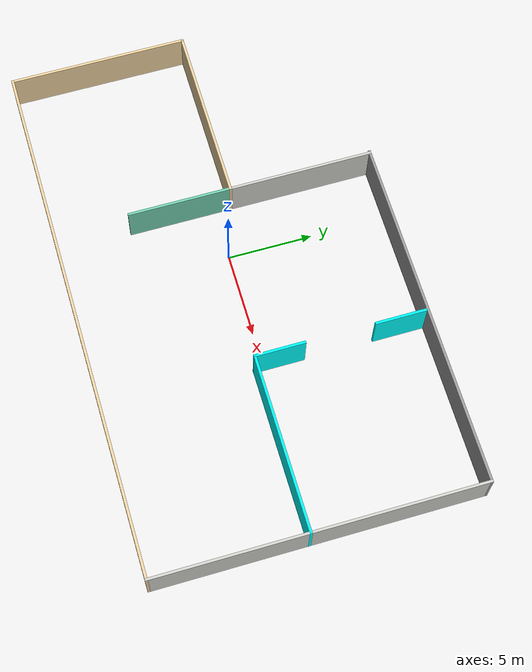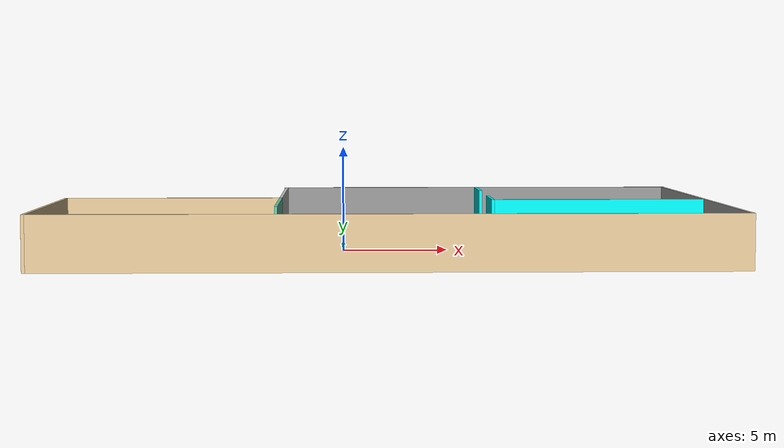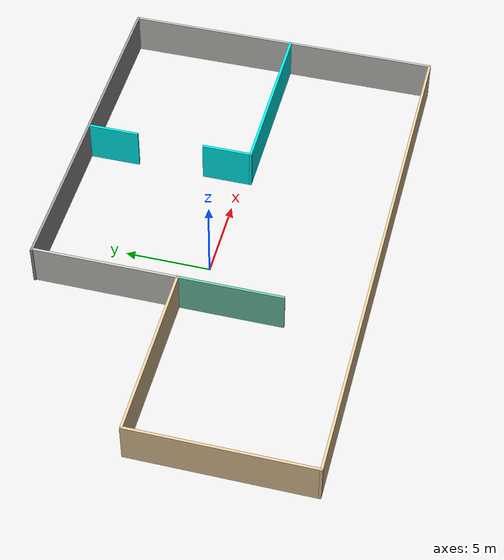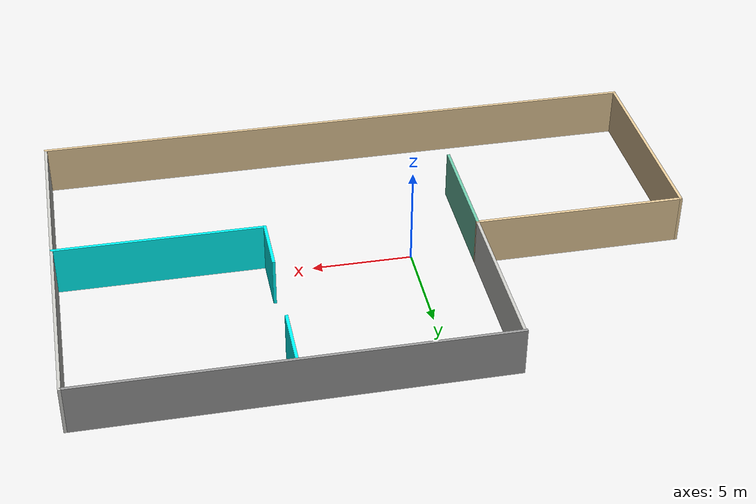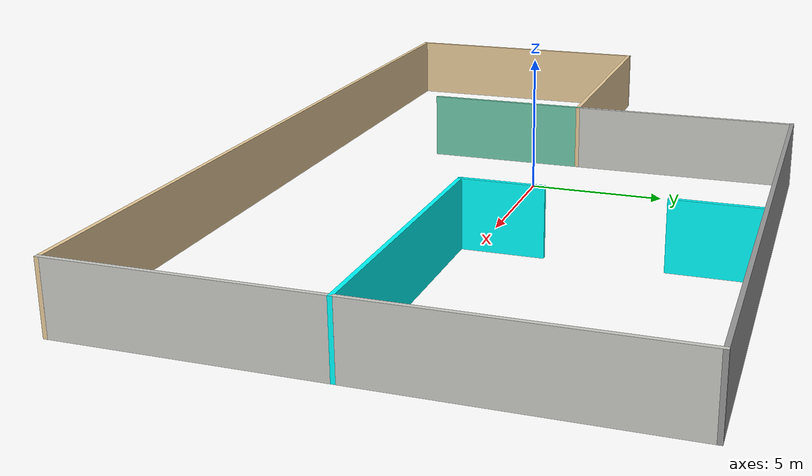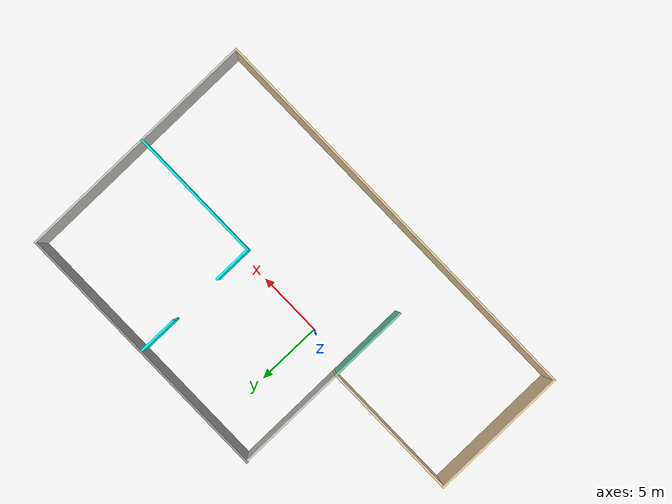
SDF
<?xml version='1.0'?>
<sdf version='1.6'>
  <model name='building'>
    <pose frame=''>1.986 0.000923 0 0 -0 0</pose>
    <link name='Wall_10'>
      <collision name='Wall_10_Collision'>
        <geometry>
          <box>
            <size>6.15 0.15 2.5</size>
          </box>
        </geometry>
        <pose frame=''>0 0 1.25 0 -0 0</pose>
      </collision>
      <visual name='Wall_10_Visual'>
        <pose frame=''>0 0 1.25 0 -0 0</pose>
        <geometry>
          <box>
            <size>6.15 0.15 2.5</size>
          </box>
        </geometry>
        <material>
          <script>
            <uri>file://media/materials/scripts/gazebo.material</uri>
            <name>Gazebo/Grey</name>
          </script>
          <ambient>0.435294 0.796078 0.67451 1</ambient>
        </material>
        <meta>
          <layer>0</layer>
        </meta>
      </visual>
      <pose frame=''>-5.063 -2.00092 0 0 0 -1.5708</pose>
    </link>
    <link name='Wall_12'>
      <collision name='Wall_12_Collision'>
        <geometry>
          <box>
            <size>10.4574 0.15 2.5</size>
          </box>
        </geometry>
        <pose frame=''>0 0 1.25 0 -0 0</pose>
      </collision>
      <visual name='Wall_12_Visual'>
        <pose frame=''>0 0 1.25 0 -0 0</pose>
        <geometry>
          <box>
            <size>10.4574 0.15 2.5</size>
          </box>
        </geometry>
        <material>
          <script>
            <uri>file://media/materials/scripts/gazebo.material</uri>
            <name>Gazebo/Grey</name>
          </script>
          <ambient>0 1 1 1</ambient>
        </material>
        <meta>
          <layer>0</layer>
        </meta>
      </visual>
      <pose frame=''>10.3965 -0.568923 0 0 -0 3.14159</pose>
    </link>
    <link name='Wall_13'>
      <collision name='Wall_13_Collision'>
        <geometry>
          <box>
            <size>3 0.15 2.5</size>
          </box>
        </geometry>
        <pose frame=''>0 0 1.25 0 -0 0</pose>
      </collision>
      <visual name='Wall_13_Visual'>
        <pose frame=''>0 0 1.25 0 -0 0</pose>
        <geometry>
          <box>
            <size>3 0.15 2.5</size>
          </box>
        </geometry>
        <material>
          <script>
            <uri>file://media/materials/scripts/gazebo.material</uri>
            <name>Gazebo/Grey</name>
          </script>
          <ambient>0 1 1 1</ambient>
        </material>
        <meta>
          <layer>0</layer>
        </meta>
      </visual>
      <pose frame=''>5.24289 0.856077 0 0 -0 1.57087</pose>
    </link>
    <link name='Wall_15'>
      <collision name='Wall_15_Collision'>
        <geometry>
          <box>
            <size>3 0.15 2.5</size>
          </box>
        </geometry>
        <pose frame=''>0 0 1.25 0 -0 0</pose>
      </collision>
      <visual name='Wall_15_Visual'>
        <pose frame=''>0 0 1.25 0 -0 0</pose>
        <geometry>
          <box>
            <size>3 0.15 2.5</size>
          </box>
        </geometry>
        <material>
          <script>
            <uri>file://media/materials/scripts/gazebo.material</uri>
            <name>Gazebo/Grey</name>
          </script>
          <ambient>0 1 1 1</ambient>
        </material>
        <meta>
          <layer>0</layer>
        </meta>
      </visual>
      <pose frame=''>5.25855 7.85224 0 0 0 -1.5708</pose>
    </link>
    <link name='Wall_3'>
      <collision name='Wall_3_Collision'>
        <geometry>
          <box>
            <size>10.5741 0.15 2.5</size>
          </box>
        </geometry>
        <pose frame=''>0 0 1.25 0 -0 0</pose>
      </collision>
      <visual name='Wall_3_Visual'>
        <pose frame=''>0 0 1.25 0 -0 0</pose>
        <geometry>
          <box>
            <size>10.5741 0.15 2.5</size>
          </box>
        </geometry>
        <material>
          <script>
            <uri>file://media/materials/scripts/gazebo.material</uri>
            <name>Gazebo/Grey</name>
          </script>
          <ambient>0.921569 0.807843 0.615686 1</ambient>
        </material>
        <meta>
          <layer>0</layer>
        </meta>
      </visual>
      <pose frame=''>-15.55 -4.21292 0 0 0 -1.5708</pose>
    </link>
    <link name='Wall_4'>
      <collision name='Wall_4_Collision'>
        <geometry>
          <box>
            <size>31.25 0.15 2.5</size>
          </box>
        </geometry>
        <pose frame=''>0 0 1.25 0 -0 0</pose>
      </collision>
      <visual name='Wall_4_Visual'>
        <pose frame=''>0 0 1.25 0 -0 0</pose>
        <geometry>
          <box>
            <size>31.25 0.15 2.5</size>
          </box>
        </geometry>
        <material>
          <script>
            <uri>file://media/materials/scripts/gazebo.material</uri>
            <name>Gazebo/Grey</name>
          </script>
          <ambient>0.921569 0.807843 0.615686 1</ambient>
        </material>
        <meta>
          <layer>0</layer>
        </meta>
      </visual>
      <pose frame=''>-0.000188 -9.42496 0 0 0 -3e-06</pose>
    </link>
    <link name='Wall_5'>
      <collision name='Wall_5_Collision'>
        <geometry>
          <box>
            <size>19 0.15 2.5</size>
          </box>
        </geometry>
        <pose frame=''>0 0 1.25 0 -0 0</pose>
      </collision>
      <visual name='Wall_5_Visual'>
        <pose frame=''>0 0 1.25 0 -0 0</pose>
        <geometry>
          <box>
            <size>19 0.15 2.5</size>
          </box>
        </geometry>
        <material>
          <script>
            <uri>file://media/materials/scripts/gazebo.material</uri>
            <name>Gazebo/CeilingTiled</name>
          </script>
          <ambient>1 1 1 1</ambient>
        </material>
        <meta>
          <layer>0</layer>
        </meta>
      </visual>
      <pose frame=''>15.5496 -1e-06 0 0 -0 1.5708</pose>
    </link>
    <link name='Wall_6'>
      <collision name='Wall_6_Collision'>
        <geometry>
          <box>
            <size>20.8246 0.15 2.5</size>
          </box>
        </geometry>
        <pose frame=''>0 0 1.25 0 -0 0</pose>
      </collision>
      <visual name='Wall_6_Visual'>
        <pose frame=''>0 0 1.25 0 -0 0</pose>
        <geometry>
          <box>
            <size>20.8246 0.15 2.5</size>
          </box>
        </geometry>
        <material>
          <script>
            <uri>file://media/materials/scripts/gazebo.material</uri>
            <name>Gazebo/Grey</name>
          </script>
          <ambient>1 1 1 1</ambient>
        </material>
        <meta>
          <layer>0</layer>
        </meta>
      </visual>
      <pose frame=''>5.21234 9.425 0 0 -0 3.14159</pose>
    </link>
    <link name='Wall_7'>
      <collision name='Wall_7_Collision'>
        <geometry>
          <box>
            <size>8.57592 0.15 2.5</size>
          </box>
        </geometry>
        <pose frame=''>0 0 1.25 0 -0 0</pose>
      </collision>
      <visual name='Wall_7_Visual'>
        <pose frame=''>0 0 1.25 0 -0 0</pose>
        <geometry>
          <box>
            <size>8.57592 0.15 2.5</size>
          </box>
        </geometry>
        <material>
          <script>
            <uri>file://media/materials/scripts/gazebo.material</uri>
            <name>Gazebo/CeilingTiled</name>
          </script>
          <ambient>1 1 1 1</ambient>
        </material>
        <meta>
          <layer>0</layer>
        </meta>
      </visual>
      <pose frame=''>-5.06321 5.21204 0 0 0 -1.57075</pose>
    </link>
    <link name='Wall_8'>
      <collision name='Wall_8_Collision'>
        <geometry>
          <box>
            <size>10.5754 0.15 2.5</size>
          </box>
        </geometry>
        <pose frame=''>0 0 1.25 0 -0 0</pose>
      </collision>
      <visual name='Wall_8_Visual'>
        <pose frame=''>0 0 1.25 0 -0 0</pose>
        <geometry>
          <box>
            <size>10.5754 0.15 2.5</size>
          </box>
        </geometry>
        <material>
          <script>
            <uri>file://media/materials/scripts/gazebo.material</uri>
            <name>Gazebo/Grey</name>
          </script>
          <ambient>0.921569 0.807843 0.615686 1</ambient>
        </material>
        <meta>
          <layer>0</layer>
        </meta>
      </visual>
      <pose frame=''>-10.2755 0.999077 0 0 -0 3.14159</pose>
    </link>
    <static>1</static>
  </model>
</sdf>
